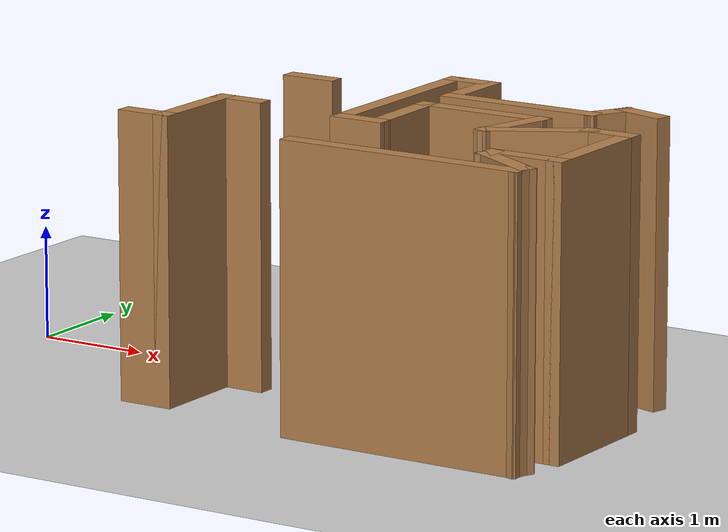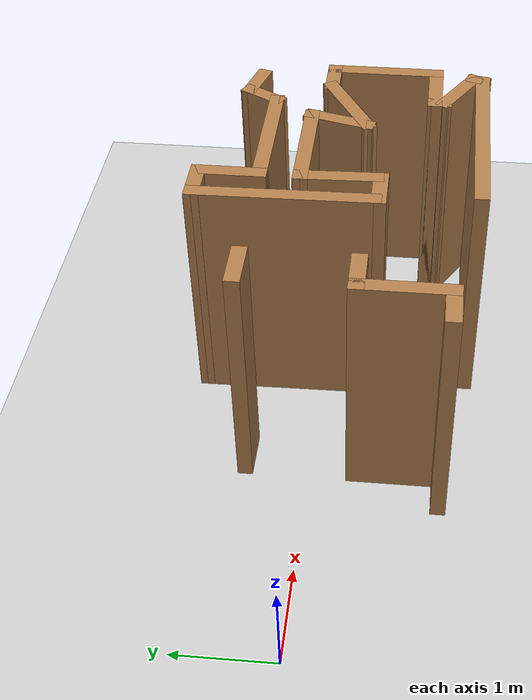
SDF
<sdf version="1.6">
 <world name="default">
  <model name="ground_plane">
   <static>1</static>
   <link name="link">
    <collision name="collision">
     <geometry><plane><normal>0 0 1</normal><size>100 100</size></plane></geometry>
     <surface><friction><ode><mu>100</mu><mu2>50</mu2></ode></friction></surface>
    </collision>
    <visual name="visual">
     <cast_shadows>0</cast_shadows>
     <geometry><plane><normal>0 0 1</normal><size>100 100</size></plane></geometry>
     <material>
      <script><uri>file://media/materials/scripts/gazebo.material</uri><name>Gazebo/Grey</name></script>
     </material>
    </visual>
   </link>
  </model>
  <model name="map_30">
   <link name="Wall_101">
    <pose>4.91655 -1.09749 0 0 -0 0</pose>
    <visual name="Wall_101_Visual">
     <pose>0 0 1.25 0 -0 0</pose>
     <geometry><box><size>2.25 0.15 2.5</size></box></geometry>
     <material>
      <script><uri>file://media/materials/scripts/gazebo.material</uri><name>Gazebo/Wood</name></script>
      <ambient>1 1 1 1</ambient>
      <shader type="pixel"/>
     </material>
     <meta><layer>0</layer></meta>
    </visual>
    <collision name="Wall_101_Collision">
     <pose>0 0 1.25 0 -0 0</pose>
     <geometry><box><size>2.25 0.15 2.5</size></box></geometry>
     <surface>
      <friction>
       <ode><mu>1</mu><mu2>1</mu2><fdir1>0 0 0</fdir1><slip1>0</slip1><slip2>0</slip2></ode>
       <torsional>
        <coefficient>1</coefficient>
        <patch_radius>0</patch_radius>
        <surface_radius>0</surface_radius>
        <use_patch_radius>1</use_patch_radius>
        <ode><slip>0</slip></ode>
       </torsional>
      </friction>
      <bounce><restitution_coefficient>0</restitution_coefficient><threshold>1e+06</threshold></bounce>
      <contact>
       <collide_without_contact>0</collide_without_contact>
       <collide_without_contact_bitmask>1</collide_without_contact_bitmask>
       <collide_bitmask>1</collide_bitmask>
       <ode>
        <soft_cfm>0</soft_cfm>
        <soft_erp>0.2</soft_erp>
        <kp>1e+13</kp>
        <kd>1</kd>
        <max_vel>0.01</max_vel>
        <min_depth>0</min_depth>
       </ode>
       <bullet>
        <split_impulse>1</split_impulse>
        <split_impulse_penetration_threshold>-0.01</split_impulse_penetration_threshold>
        <soft_cfm>0</soft_cfm>
        <soft_erp>0.2</soft_erp>
        <kp>1e+13</kp>
        <kd>1</kd>
       </bullet>
      </contact>
     </surface>
    </collision>
   </link>
   <link name="Wall_102">
    <pose>5.97949 -1.04919 0 0 -0 1.309</pose>
    <visual name="Wall_102_Visual">
     <pose>0 0 1.25 0 -0 0</pose>
     <geometry><box><size>0.25 0.15 2.5</size></box></geometry>
     <material>
      <script><uri>file://media/materials/scripts/gazebo.material</uri><name>Gazebo/Wood</name></script>
      <ambient>1 1 1 1</ambient>
      <shader type="pixel"/>
     </material>
     <meta><layer>0</layer></meta>
    </visual>
    <collision name="Wall_102_Collision">
     <pose>0 0 1.25 0 -0 0</pose>
     <geometry><box><size>0.25 0.15 2.5</size></box></geometry>
     <surface>
      <friction>
       <ode><mu>1</mu><mu2>1</mu2><fdir1>0 0 0</fdir1><slip1>0</slip1><slip2>0</slip2></ode>
       <torsional>
        <coefficient>1</coefficient>
        <patch_radius>0</patch_radius>
        <surface_radius>0</surface_radius>
        <use_patch_radius>1</use_patch_radius>
        <ode><slip>0</slip></ode>
       </torsional>
      </friction>
      <bounce><restitution_coefficient>0</restitution_coefficient><threshold>1e+06</threshold></bounce>
      <contact>
       <collide_without_contact>0</collide_without_contact>
       <collide_without_contact_bitmask>1</collide_without_contact_bitmask>
       <collide_bitmask>1</collide_bitmask>
       <ode>
        <soft_cfm>0</soft_cfm>
        <soft_erp>0.2</soft_erp>
        <kp>1e+13</kp>
        <kd>1</kd>
        <max_vel>0.01</max_vel>
        <min_depth>0</min_depth>
       </ode>
       <bullet>
        <split_impulse>1</split_impulse>
        <split_impulse_penetration_threshold>-0.01</split_impulse_penetration_threshold>
        <soft_cfm>0</soft_cfm>
        <soft_erp>0.2</soft_erp>
        <kp>1e+13</kp>
        <kd>1</kd>
       </bullet>
      </contact>
     </surface>
    </collision>
   </link>
   <link name="Wall_103">
    <pose>5.73262 -0.850895 0 0 -0 2.61799</pose>
    <visual name="Wall_103_Visual">
     <pose>0 0 1.25 0 -0 0</pose>
     <geometry><box><size>0.75 0.15 2.5</size></box></geometry>
     <material>
      <script><uri>file://media/materials/scripts/gazebo.material</uri><name>Gazebo/Wood</name></script>
      <ambient>1 1 1 1</ambient>
      <shader type="pixel"/>
     </material>
     <meta><layer>0</layer></meta>
    </visual>
    <collision name="Wall_103_Collision">
     <pose>0 0 1.25 0 -0 0</pose>
     <geometry><box><size>0.75 0.15 2.5</size></box></geometry>
     <surface>
      <friction>
       <ode><mu>1</mu><mu2>1</mu2><fdir1>0 0 0</fdir1><slip1>0</slip1><slip2>0</slip2></ode>
       <torsional>
        <coefficient>1</coefficient>
        <patch_radius>0</patch_radius>
        <surface_radius>0</surface_radius>
        <use_patch_radius>1</use_patch_radius>
        <ode><slip>0</slip></ode>
       </torsional>
      </friction>
      <bounce><restitution_coefficient>0</restitution_coefficient><threshold>1e+06</threshold></bounce>
      <contact>
       <collide_without_contact>0</collide_without_contact>
       <collide_without_contact_bitmask>1</collide_without_contact_bitmask>
       <collide_bitmask>1</collide_bitmask>
       <ode>
        <soft_cfm>0</soft_cfm>
        <soft_erp>0.2</soft_erp>
        <kp>1e+13</kp>
        <kd>1</kd>
        <max_vel>0.01</max_vel>
        <min_depth>0</min_depth>
       </ode>
       <bullet>
        <split_impulse>1</split_impulse>
        <split_impulse_penetration_threshold>-0.01</split_impulse_penetration_threshold>
        <soft_cfm>0</soft_cfm>
        <soft_erp>0.2</soft_erp>
        <kp>1e+13</kp>
        <kd>1</kd>
       </bullet>
      </contact>
     </surface>
    </collision>
   </link>
   <link name="Wall_104">
    <pose>5.47282 -0.650895 0 0 -0 1.5708</pose>
    <visual name="Wall_104_Visual">
     <pose>0 0 1.25 0 -0 0</pose>
     <geometry><box><size>0.25 0.15 2.5</size></box></geometry>
     <material>
      <script><uri>file://media/materials/scripts/gazebo.material</uri><name>Gazebo/Wood</name></script>
      <ambient>1 1 1 1</ambient>
      <shader type="pixel"/>
     </material>
     <meta><layer>0</layer></meta>
    </visual>
    <collision name="Wall_104_Collision">
     <pose>0 0 1.25 0 -0 0</pose>
     <geometry><box><size>0.25 0.15 2.5</size></box></geometry>
     <surface>
      <friction>
       <ode><mu>1</mu><mu2>1</mu2><fdir1>0 0 0</fdir1><slip1>0</slip1><slip2>0</slip2></ode>
       <torsional>
        <coefficient>1</coefficient>
        <patch_radius>0</patch_radius>
        <surface_radius>0</surface_radius>
        <use_patch_radius>1</use_patch_radius>
        <ode><slip>0</slip></ode>
       </torsional>
      </friction>
      <bounce><restitution_coefficient>0</restitution_coefficient><threshold>1e+06</threshold></bounce>
      <contact>
       <collide_without_contact>0</collide_without_contact>
       <collide_without_contact_bitmask>1</collide_without_contact_bitmask>
       <collide_bitmask>1</collide_bitmask>
       <ode>
        <soft_cfm>0</soft_cfm>
        <soft_erp>0.2</soft_erp>
        <kp>1e+13</kp>
        <kd>1</kd>
        <max_vel>0.01</max_vel>
        <min_depth>0</min_depth>
       </ode>
       <bullet>
        <split_impulse>1</split_impulse>
        <split_impulse_penetration_threshold>-0.01</split_impulse_penetration_threshold>
        <soft_cfm>0</soft_cfm>
        <soft_erp>0.2</soft_erp>
        <kp>1e+13</kp>
        <kd>1</kd>
       </bullet>
      </contact>
     </surface>
    </collision>
   </link>
   <link name="Wall_105">
    <pose>5.77282 -0.600895 0 0 -0 0</pose>
    <visual name="Wall_105_Visual">
     <pose>0 0 1.25 0 -0 0</pose>
     <geometry><box><size>0.75 0.15 2.5</size></box></geometry>
     <material>
      <script><uri>file://media/materials/scripts/gazebo.material</uri><name>Gazebo/Wood</name></script>
      <ambient>1 1 1 1</ambient>
      <shader type="pixel"/>
     </material>
     <meta><layer>0</layer></meta>
    </visual>
    <collision name="Wall_105_Collision">
     <pose>0 0 1.25 0 -0 0</pose>
     <geometry><box><size>0.75 0.15 2.5</size></box></geometry>
     <surface>
      <friction>
       <ode><mu>1</mu><mu2>1</mu2><fdir1>0 0 0</fdir1><slip1>0</slip1><slip2>0</slip2></ode>
       <torsional>
        <coefficient>1</coefficient>
        <patch_radius>0</patch_radius>
        <surface_radius>0</surface_radius>
        <use_patch_radius>1</use_patch_radius>
        <ode><slip>0</slip></ode>
       </torsional>
      </friction>
      <bounce><restitution_coefficient>0</restitution_coefficient><threshold>1e+06</threshold></bounce>
      <contact>
       <collide_without_contact>0</collide_without_contact>
       <collide_without_contact_bitmask>1</collide_without_contact_bitmask>
       <collide_bitmask>1</collide_bitmask>
       <ode>
        <soft_cfm>0</soft_cfm>
        <soft_erp>0.2</soft_erp>
        <kp>1e+13</kp>
        <kd>1</kd>
        <max_vel>0.01</max_vel>
        <min_depth>0</min_depth>
       </ode>
       <bullet>
        <split_impulse>1</split_impulse>
        <split_impulse_penetration_threshold>-0.01</split_impulse_penetration_threshold>
        <soft_cfm>0</soft_cfm>
        <soft_erp>0.2</soft_erp>
        <kp>1e+13</kp>
        <kd>1</kd>
       </bullet>
      </contact>
     </surface>
    </collision>
   </link>
   <link name="Wall_106">
    <pose>6.07282 -0.050895 0 0 -0 1.5708</pose>
    <visual name="Wall_106_Visual">
     <pose>0 0 1.25 0 -0 0</pose>
     <geometry><box><size>1.25 0.15 2.5</size></box></geometry>
     <material>
      <script><uri>file://media/materials/scripts/gazebo.material</uri><name>Gazebo/Wood</name></script>
      <ambient>1 1 1 1</ambient>
      <shader type="pixel"/>
     </material>
     <meta><layer>0</layer></meta>
    </visual>
    <collision name="Wall_106_Collision">
     <pose>0 0 1.25 0 -0 0</pose>
     <geometry><box><size>1.25 0.15 2.5</size></box></geometry>
     <surface>
      <friction>
       <ode><mu>1</mu><mu2>1</mu2><fdir1>0 0 0</fdir1><slip1>0</slip1><slip2>0</slip2></ode>
       <torsional>
        <coefficient>1</coefficient>
        <patch_radius>0</patch_radius>
        <surface_radius>0</surface_radius>
        <use_patch_radius>1</use_patch_radius>
        <ode><slip>0</slip></ode>
       </torsional>
      </friction>
      <bounce><restitution_coefficient>0</restitution_coefficient><threshold>1e+06</threshold></bounce>
      <contact>
       <collide_without_contact>0</collide_without_contact>
       <collide_without_contact_bitmask>1</collide_without_contact_bitmask>
       <collide_bitmask>1</collide_bitmask>
       <ode>
        <soft_cfm>0</soft_cfm>
        <soft_erp>0.2</soft_erp>
        <kp>1e+13</kp>
        <kd>1</kd>
        <max_vel>0.01</max_vel>
        <min_depth>0</min_depth>
       </ode>
       <bullet>
        <split_impulse>1</split_impulse>
        <split_impulse_penetration_threshold>-0.01</split_impulse_penetration_threshold>
        <soft_cfm>0</soft_cfm>
        <soft_erp>0.2</soft_erp>
        <kp>1e+13</kp>
        <kd>1</kd>
       </bullet>
      </contact>
     </surface>
    </collision>
   </link>
   <link name="Wall_107">
    <pose>5.89782 0.499105 0 0 -0 3.14159</pose>
    <visual name="Wall_107_Visual">
     <pose>0 0 1.25 0 -0 0</pose>
     <geometry><box><size>0.5 0.15 2.5</size></box></geometry>
     <material>
      <script><uri>file://media/materials/scripts/gazebo.material</uri><name>Gazebo/Wood</name></script>
      <ambient>1 1 1 1</ambient>
      <shader type="pixel"/>
     </material>
     <meta><layer>0</layer></meta>
    </visual>
    <collision name="Wall_107_Collision">
     <pose>0 0 1.25 0 -0 0</pose>
     <geometry><box><size>0.5 0.15 2.5</size></box></geometry>
     <surface>
      <friction>
       <ode><mu>1</mu><mu2>1</mu2><fdir1>0 0 0</fdir1><slip1>0</slip1><slip2>0</slip2></ode>
       <torsional>
        <coefficient>1</coefficient>
        <patch_radius>0</patch_radius>
        <surface_radius>0</surface_radius>
        <use_patch_radius>1</use_patch_radius>
        <ode><slip>0</slip></ode>
       </torsional>
      </friction>
      <bounce><restitution_coefficient>0</restitution_coefficient><threshold>1e+06</threshold></bounce>
      <contact>
       <collide_without_contact>0</collide_without_contact>
       <collide_without_contact_bitmask>1</collide_without_contact_bitmask>
       <collide_bitmask>1</collide_bitmask>
       <ode>
        <soft_cfm>0</soft_cfm>
        <soft_erp>0.2</soft_erp>
        <kp>1e+13</kp>
        <kd>1</kd>
        <max_vel>0.01</max_vel>
        <min_depth>0</min_depth>
       </ode>
       <bullet>
        <split_impulse>1</split_impulse>
        <split_impulse_penetration_threshold>-0.01</split_impulse_penetration_threshold>
        <soft_cfm>0</soft_cfm>
        <soft_erp>0.2</soft_erp>
        <kp>1e+13</kp>
        <kd>1</kd>
       </bullet>
      </contact>
     </surface>
    </collision>
   </link>
   <link name="Wall_108">
    <pose>5.35475 0.286605 0 0 0 -2.61799</pose>
    <visual name="Wall_108_Visual">
     <pose>0 0 1.25 0 -0 0</pose>
     <geometry><box><size>1 0.15 2.5</size></box></geometry>
     <material>
      <script><uri>file://media/materials/scripts/gazebo.material</uri><name>Gazebo/Wood</name></script>
      <ambient>1 1 1 1</ambient>
      <shader type="pixel"/>
     </material>
     <meta><layer>0</layer></meta>
    </visual>
    <collision name="Wall_108_Collision">
     <pose>0 0 1.25 0 -0 0</pose>
     <geometry><box><size>1 0.15 2.5</size></box></geometry>
     <surface>
      <friction>
       <ode><mu>1</mu><mu2>1</mu2><fdir1>0 0 0</fdir1><slip1>0</slip1><slip2>0</slip2></ode>
       <torsional>
        <coefficient>1</coefficient>
        <patch_radius>0</patch_radius>
        <surface_radius>0</surface_radius>
        <use_patch_radius>1</use_patch_radius>
        <ode><slip>0</slip></ode>
       </torsional>
      </friction>
      <bounce><restitution_coefficient>0</restitution_coefficient><threshold>1e+06</threshold></bounce>
      <contact>
       <collide_without_contact>0</collide_without_contact>
       <collide_without_contact_bitmask>1</collide_without_contact_bitmask>
       <collide_bitmask>1</collide_bitmask>
       <ode>
        <soft_cfm>0</soft_cfm>
        <soft_erp>0.2</soft_erp>
        <kp>1e+13</kp>
        <kd>1</kd>
        <max_vel>0.01</max_vel>
        <min_depth>0</min_depth>
       </ode>
       <bullet>
        <split_impulse>1</split_impulse>
        <split_impulse_penetration_threshold>-0.01</split_impulse_penetration_threshold>
        <soft_cfm>0</soft_cfm>
        <soft_erp>0.2</soft_erp>
        <kp>1e+13</kp>
        <kd>1</kd>
       </bullet>
      </contact>
     </surface>
    </collision>
   </link>
   <link name="Wall_109">
    <pose>5.06434 0.363883 0 0 -0 1.309</pose>
    <visual name="Wall_109_Visual">
     <pose>0 0 1.25 0 -0 0</pose>
     <geometry><box><size>0.75 0.15 2.5</size></box></geometry>
     <material>
      <script><uri>file://media/materials/scripts/gazebo.material</uri><name>Gazebo/Wood</name></script>
      <ambient>1 1 1 1</ambient>
      <shader type="pixel"/>
     </material>
     <meta><layer>0</layer></meta>
    </visual>
    <collision name="Wall_109_Collision">
     <pose>0 0 1.25 0 -0 0</pose>
     <geometry><box><size>0.75 0.15 2.5</size></box></geometry>
     <surface>
      <friction>
       <ode><mu>1</mu><mu2>1</mu2><fdir1>0 0 0</fdir1><slip1>0</slip1><slip2>0</slip2></ode>
       <torsional>
        <coefficient>1</coefficient>
        <patch_radius>0</patch_radius>
        <surface_radius>0</surface_radius>
        <use_patch_radius>1</use_patch_radius>
        <ode><slip>0</slip></ode>
       </torsional>
      </friction>
      <bounce><restitution_coefficient>0</restitution_coefficient><threshold>1e+06</threshold></bounce>
      <contact>
       <collide_without_contact>0</collide_without_contact>
       <collide_without_contact_bitmask>1</collide_without_contact_bitmask>
       <collide_bitmask>1</collide_bitmask>
       <ode>
        <soft_cfm>0</soft_cfm>
        <soft_erp>0.2</soft_erp>
        <kp>1e+13</kp>
        <kd>1</kd>
        <max_vel>0.01</max_vel>
        <min_depth>0</min_depth>
       </ode>
       <bullet>
        <split_impulse>1</split_impulse>
        <split_impulse_penetration_threshold>-0.01</split_impulse_penetration_threshold>
        <soft_cfm>0</soft_cfm>
        <soft_erp>0.2</soft_erp>
        <kp>1e+13</kp>
        <kd>1</kd>
       </bullet>
      </contact>
     </surface>
    </collision>
   </link>
   <link name="Wall_112">
    <pose>4.59199 0.653661 0 0 -0 3.14159</pose>
    <visual name="Wall_112_Visual">
     <pose>0 0 1.25 0 -0 0</pose>
     <geometry><box><size>1.25 0.15 2.5</size></box></geometry>
     <material>
      <script><uri>file://media/materials/scripts/gazebo.material</uri><name>Gazebo/Wood</name></script>
      <ambient>1 1 1 1</ambient>
      <shader type="pixel"/>
     </material>
     <meta><layer>0</layer></meta>
    </visual>
    <collision name="Wall_112_Collision">
     <pose>0 0 1.25 0 -0 0</pose>
     <geometry><box><size>1.25 0.15 2.5</size></box></geometry>
     <surface>
      <friction>
       <ode><mu>1</mu><mu2>1</mu2><fdir1>0 0 0</fdir1><slip1>0</slip1><slip2>0</slip2></ode>
       <torsional>
        <coefficient>1</coefficient>
        <patch_radius>0</patch_radius>
        <surface_radius>0</surface_radius>
        <use_patch_radius>1</use_patch_radius>
        <ode><slip>0</slip></ode>
       </torsional>
      </friction>
      <bounce><restitution_coefficient>0</restitution_coefficient><threshold>1e+06</threshold></bounce>
      <contact>
       <collide_without_contact>0</collide_without_contact>
       <collide_without_contact_bitmask>1</collide_without_contact_bitmask>
       <collide_bitmask>1</collide_bitmask>
       <ode>
        <soft_cfm>0</soft_cfm>
        <soft_erp>0.2</soft_erp>
        <kp>1e+13</kp>
        <kd>1</kd>
        <max_vel>0.01</max_vel>
        <min_depth>0</min_depth>
       </ode>
       <bullet>
        <split_impulse>1</split_impulse>
        <split_impulse_penetration_threshold>-0.01</split_impulse_penetration_threshold>
        <soft_cfm>0</soft_cfm>
        <soft_erp>0.2</soft_erp>
        <kp>1e+13</kp>
        <kd>1</kd>
       </bullet>
      </contact>
     </surface>
    </collision>
   </link>
   <link name="Wall_113">
    <pose>4.05355 0.286487 0 0 0 -1.53931</pose>
    <visual name="Wall_113_Visual">
     <pose>0 0 1.25 0 -0 0</pose>
     <geometry><box><size>0.884711 0.15 2.5</size></box></geometry>
     <material>
      <script><uri>file://media/materials/scripts/gazebo.material</uri><name>Gazebo/Wood</name></script>
      <ambient>1 1 1 1</ambient>
      <shader type="pixel"/>
     </material>
     <meta><layer>0</layer></meta>
    </visual>
    <collision name="Wall_113_Collision">
     <pose>0 0 1.25 0 -0 0</pose>
     <geometry><box><size>0.884711 0.15 2.5</size></box></geometry>
     <surface>
      <friction>
       <ode><mu>1</mu><mu2>1</mu2><fdir1>0 0 0</fdir1><slip1>0</slip1><slip2>0</slip2></ode>
       <torsional>
        <coefficient>1</coefficient>
        <patch_radius>0</patch_radius>
        <surface_radius>0</surface_radius>
        <use_patch_radius>1</use_patch_radius>
        <ode><slip>0</slip></ode>
       </torsional>
      </friction>
      <bounce><restitution_coefficient>0</restitution_coefficient><threshold>1e+06</threshold></bounce>
      <contact>
       <collide_without_contact>0</collide_without_contact>
       <collide_without_contact_bitmask>1</collide_without_contact_bitmask>
       <collide_bitmask>1</collide_bitmask>
       <ode>
        <soft_cfm>0</soft_cfm>
        <soft_erp>0.2</soft_erp>
        <kp>1e+13</kp>
        <kd>1</kd>
        <max_vel>0.01</max_vel>
        <min_depth>0</min_depth>
       </ode>
       <bullet>
        <split_impulse>1</split_impulse>
        <split_impulse_penetration_threshold>-0.01</split_impulse_penetration_threshold>
        <soft_cfm>0</soft_cfm>
        <soft_erp>0.2</soft_erp>
        <kp>1e+13</kp>
        <kd>1</kd>
       </bullet>
      </contact>
     </surface>
    </collision>
   </link>
   <link name="Wall_116">
    <pose>3.89012 -0.126947 0 0 -0 3.14159</pose>
    <visual name="Wall_116_Visual">
     <pose>0 0 1.25 0 -0 0</pose>
     <geometry><box><size>0.5 0.15 2.5</size></box></geometry>
     <material>
      <script><uri>file://media/materials/scripts/gazebo.material</uri><name>Gazebo/Wood</name></script>
      <ambient>1 1 1 1</ambient>
      <shader type="pixel"/>
     </material>
     <meta><layer>0</layer></meta>
    </visual>
    <collision name="Wall_116_Collision">
     <pose>0 0 1.25 0 -0 0</pose>
     <geometry><box><size>0.5 0.15 2.5</size></box></geometry>
     <surface>
      <friction>
       <ode><mu>1</mu><mu2>1</mu2><fdir1>0 0 0</fdir1><slip1>0</slip1><slip2>0</slip2></ode>
       <torsional>
        <coefficient>1</coefficient>
        <patch_radius>0</patch_radius>
        <surface_radius>0</surface_radius>
        <use_patch_radius>1</use_patch_radius>
        <ode><slip>0</slip></ode>
       </torsional>
      </friction>
      <bounce><restitution_coefficient>0</restitution_coefficient><threshold>1e+06</threshold></bounce>
      <contact>
       <collide_without_contact>0</collide_without_contact>
       <collide_without_contact_bitmask>1</collide_without_contact_bitmask>
       <collide_bitmask>1</collide_bitmask>
       <ode>
        <soft_cfm>0</soft_cfm>
        <soft_erp>0.2</soft_erp>
        <kp>1e+13</kp>
        <kd>1</kd>
        <max_vel>0.01</max_vel>
        <min_depth>0</min_depth>
       </ode>
       <bullet>
        <split_impulse>1</split_impulse>
        <split_impulse_penetration_threshold>-0.01</split_impulse_penetration_threshold>
        <soft_cfm>0</soft_cfm>
        <soft_erp>0.2</soft_erp>
        <kp>1e+13</kp>
        <kd>1</kd>
       </bullet>
      </contact>
     </surface>
    </collision>
   </link>
   <link name="Wall_117">
    <pose>3.70355 0.786487 0 0 -0 1.58413</pose>
    <visual name="Wall_117_Visual">
     <pose>0 0 1.25 0 -0 0</pose>
     <geometry><box><size>1.8845 0.15 2.5</size></box></geometry>
     <material>
      <script><uri>file://media/materials/scripts/gazebo.material</uri><name>Gazebo/Wood</name></script>
      <ambient>1 1 1 1</ambient>
      <shader type="pixel"/>
     </material>
     <meta><layer>0</layer></meta>
    </visual>
    <collision name="Wall_117_Collision">
     <pose>0 0 1.25 0 -0 0</pose>
     <geometry><box><size>1.8845 0.15 2.5</size></box></geometry>
     <surface>
      <friction>
       <ode><mu>1</mu><mu2>1</mu2><fdir1>0 0 0</fdir1><slip1>0</slip1><slip2>0</slip2></ode>
       <torsional>
        <coefficient>1</coefficient>
        <patch_radius>0</patch_radius>
        <surface_radius>0</surface_radius>
        <use_patch_radius>1</use_patch_radius>
        <ode><slip>0</slip></ode>
       </torsional>
      </friction>
      <bounce><restitution_coefficient>0</restitution_coefficient><threshold>1e+06</threshold></bounce>
      <contact>
       <collide_without_contact>0</collide_without_contact>
       <collide_without_contact_bitmask>1</collide_without_contact_bitmask>
       <collide_bitmask>1</collide_bitmask>
       <ode>
        <soft_cfm>0</soft_cfm>
        <soft_erp>0.2</soft_erp>
        <kp>1e+13</kp>
        <kd>1</kd>
        <max_vel>0.01</max_vel>
        <min_depth>0</min_depth>
       </ode>
       <bullet>
        <split_impulse>1</split_impulse>
        <split_impulse_penetration_threshold>-0.01</split_impulse_penetration_threshold>
        <soft_cfm>0</soft_cfm>
        <soft_erp>0.2</soft_erp>
        <kp>1e+13</kp>
        <kd>1</kd>
       </bullet>
      </contact>
     </surface>
    </collision>
   </link>
   <link name="Wall_118">
    <pose>3.86699 1.65366 0 0 -0 0</pose>
    <visual name="Wall_118_Visual">
     <pose>0 0 1.25 0 -0 0</pose>
     <geometry><box><size>0.5 0.15 2.5</size></box></geometry>
     <material>
      <script><uri>file://media/materials/scripts/gazebo.material</uri><name>Gazebo/Wood</name></script>
      <ambient>1 1 1 1</ambient>
      <shader type="pixel"/>
     </material>
     <meta><layer>0</layer></meta>
    </visual>
    <collision name="Wall_118_Collision">
     <pose>0 0 1.25 0 -0 0</pose>
     <geometry><box><size>0.5 0.15 2.5</size></box></geometry>
     <surface>
      <friction>
       <ode><mu>1</mu><mu2>1</mu2><fdir1>0 0 0</fdir1><slip1>0</slip1><slip2>0</slip2></ode>
       <torsional>
        <coefficient>1</coefficient>
        <patch_radius>0</patch_radius>
        <surface_radius>0</surface_radius>
        <use_patch_radius>1</use_patch_radius>
        <ode><slip>0</slip></ode>
       </torsional>
      </friction>
      <bounce><restitution_coefficient>0</restitution_coefficient><threshold>1e+06</threshold></bounce>
      <contact>
       <collide_without_contact>0</collide_without_contact>
       <collide_without_contact_bitmask>1</collide_without_contact_bitmask>
       <collide_bitmask>1</collide_bitmask>
       <ode>
        <soft_cfm>0</soft_cfm>
        <soft_erp>0.2</soft_erp>
        <kp>1e+13</kp>
        <kd>1</kd>
        <max_vel>0.01</max_vel>
        <min_depth>0</min_depth>
       </ode>
       <bullet>
        <split_impulse>1</split_impulse>
        <split_impulse_penetration_threshold>-0.01</split_impulse_penetration_threshold>
        <soft_cfm>0</soft_cfm>
        <soft_erp>0.2</soft_erp>
        <kp>1e+13</kp>
        <kd>1</kd>
       </bullet>
      </contact>
     </surface>
    </collision>
   </link>
   <link name="Wall_121">
    <pose>4.04199 1.35366 0 0 0 -1.5708</pose>
    <visual name="Wall_121_Visual">
     <pose>0 0 1.25 0 -0 0</pose>
     <geometry><box><size>0.75 0.15 2.5</size></box></geometry>
     <material>
      <script><uri>file://media/materials/scripts/gazebo.material</uri><name>Gazebo/Wood</name></script>
      <ambient>1 1 1 1</ambient>
      <shader type="pixel"/>
     </material>
     <meta><layer>0</layer></meta>
    </visual>
    <collision name="Wall_121_Collision">
     <pose>0 0 1.25 0 -0 0</pose>
     <geometry><box><size>0.75 0.15 2.5</size></box></geometry>
     <surface>
      <friction>
       <ode><mu>1</mu><mu2>1</mu2><fdir1>0 0 0</fdir1><slip1>0</slip1><slip2>0</slip2></ode>
       <torsional>
        <coefficient>1</coefficient>
        <patch_radius>0</patch_radius>
        <surface_radius>0</surface_radius>
        <use_patch_radius>1</use_patch_radius>
        <ode><slip>0</slip></ode>
       </torsional>
      </friction>
      <bounce><restitution_coefficient>0</restitution_coefficient><threshold>1e+06</threshold></bounce>
      <contact>
       <collide_without_contact>0</collide_without_contact>
       <collide_without_contact_bitmask>1</collide_without_contact_bitmask>
       <collide_bitmask>1</collide_bitmask>
       <ode>
        <soft_cfm>0</soft_cfm>
        <soft_erp>0.2</soft_erp>
        <kp>1e+13</kp>
        <kd>1</kd>
        <max_vel>0.01</max_vel>
        <min_depth>0</min_depth>
       </ode>
       <bullet>
        <split_impulse>1</split_impulse>
        <split_impulse_penetration_threshold>-0.01</split_impulse_penetration_threshold>
        <soft_cfm>0</soft_cfm>
        <soft_erp>0.2</soft_erp>
        <kp>1e+13</kp>
        <kd>1</kd>
       </bullet>
      </contact>
     </surface>
    </collision>
   </link>
   <link name="Wall_122">
    <pose>4.71699 1.05366 0 0 -0 0</pose>
    <visual name="Wall_122_Visual">
     <pose>0 0 1.25 0 -0 0</pose>
     <geometry><box><size>1.5 0.15 2.5</size></box></geometry>
     <material>
      <script><uri>file://media/materials/scripts/gazebo.material</uri><name>Gazebo/Wood</name></script>
      <ambient>1 1 1 1</ambient>
      <shader type="pixel"/>
     </material>
     <meta><layer>0</layer></meta>
    </visual>
    <collision name="Wall_122_Collision">
     <pose>0 0 1.25 0 -0 0</pose>
     <geometry><box><size>1.5 0.15 2.5</size></box></geometry>
     <surface>
      <friction>
       <ode><mu>1</mu><mu2>1</mu2><fdir1>0 0 0</fdir1><slip1>0</slip1><slip2>0</slip2></ode>
       <torsional>
        <coefficient>1</coefficient>
        <patch_radius>0</patch_radius>
        <surface_radius>0</surface_radius>
        <use_patch_radius>1</use_patch_radius>
        <ode><slip>0</slip></ode>
       </torsional>
      </friction>
      <bounce><restitution_coefficient>0</restitution_coefficient><threshold>1e+06</threshold></bounce>
      <contact>
       <collide_without_contact>0</collide_without_contact>
       <collide_without_contact_bitmask>1</collide_without_contact_bitmask>
       <collide_bitmask>1</collide_bitmask>
       <ode>
        <soft_cfm>0</soft_cfm>
        <soft_erp>0.2</soft_erp>
        <kp>1e+13</kp>
        <kd>1</kd>
        <max_vel>0.01</max_vel>
        <min_depth>0</min_depth>
       </ode>
       <bullet>
        <split_impulse>1</split_impulse>
        <split_impulse_penetration_threshold>-0.01</split_impulse_penetration_threshold>
        <soft_cfm>0</soft_cfm>
        <soft_erp>0.2</soft_erp>
        <kp>1e+13</kp>
        <kd>1</kd>
       </bullet>
      </contact>
     </surface>
    </collision>
   </link>
   <link name="Wall_123">
    <pose>5.47949 1.20521 0 0 -0 1.0472</pose>
    <visual name="Wall_123_Visual">
     <pose>0 0 1.25 0 -0 0</pose>
     <geometry><box><size>0.5 0.15 2.5</size></box></geometry>
     <material>
      <script><uri>file://media/materials/scripts/gazebo.material</uri><name>Gazebo/Wood</name></script>
      <ambient>1 1 1 1</ambient>
      <shader type="pixel"/>
     </material>
     <meta><layer>0</layer></meta>
    </visual>
    <collision name="Wall_123_Collision">
     <pose>0 0 1.25 0 -0 0</pose>
     <geometry><box><size>0.5 0.15 2.5</size></box></geometry>
     <surface>
      <friction>
       <ode><mu>1</mu><mu2>1</mu2><fdir1>0 0 0</fdir1><slip1>0</slip1><slip2>0</slip2></ode>
       <torsional>
        <coefficient>1</coefficient>
        <patch_radius>0</patch_radius>
        <surface_radius>0</surface_radius>
        <use_patch_radius>1</use_patch_radius>
        <ode><slip>0</slip></ode>
       </torsional>
      </friction>
      <bounce><restitution_coefficient>0</restitution_coefficient><threshold>1e+06</threshold></bounce>
      <contact>
       <collide_without_contact>0</collide_without_contact>
       <collide_without_contact_bitmask>1</collide_without_contact_bitmask>
       <collide_bitmask>1</collide_bitmask>
       <ode>
        <soft_cfm>0</soft_cfm>
        <soft_erp>0.2</soft_erp>
        <kp>1e+13</kp>
        <kd>1</kd>
        <max_vel>0.01</max_vel>
        <min_depth>0</min_depth>
       </ode>
       <bullet>
        <split_impulse>1</split_impulse>
        <split_impulse_penetration_threshold>-0.01</split_impulse_penetration_threshold>
        <soft_cfm>0</soft_cfm>
        <soft_erp>0.2</soft_erp>
        <kp>1e+13</kp>
        <kd>1</kd>
       </bullet>
      </contact>
     </surface>
    </collision>
   </link>
   <link name="Wall_124">
    <pose>5.73602 1.31148 0 0 0 -0.261799</pose>
    <visual name="Wall_124_Visual">
     <pose>0 0 1.25 0 -0 0</pose>
     <geometry><box><size>0.5 0.15 2.5</size></box></geometry>
     <material>
      <script><uri>file://media/materials/scripts/gazebo.material</uri><name>Gazebo/Wood</name></script>
      <ambient>1 1 1 1</ambient>
      <shader type="pixel"/>
     </material>
     <meta><layer>0</layer></meta>
    </visual>
    <collision name="Wall_124_Collision">
     <pose>0 0 1.25 0 -0 0</pose>
     <geometry><box><size>0.5 0.15 2.5</size></box></geometry>
     <surface>
      <friction>
       <ode><mu>1</mu><mu2>1</mu2><fdir1>0 0 0</fdir1><slip1>0</slip1><slip2>0</slip2></ode>
       <torsional>
        <coefficient>1</coefficient>
        <patch_radius>0</patch_radius>
        <surface_radius>0</surface_radius>
        <use_patch_radius>1</use_patch_radius>
        <ode><slip>0</slip></ode>
       </torsional>
      </friction>
      <bounce><restitution_coefficient>0</restitution_coefficient><threshold>1e+06</threshold></bounce>
      <contact>
       <collide_without_contact>0</collide_without_contact>
       <collide_without_contact_bitmask>1</collide_without_contact_bitmask>
       <collide_bitmask>1</collide_bitmask>
       <ode>
        <soft_cfm>0</soft_cfm>
        <soft_erp>0.2</soft_erp>
        <kp>1e+13</kp>
        <kd>1</kd>
        <max_vel>0.01</max_vel>
        <min_depth>0</min_depth>
       </ode>
       <bullet>
        <split_impulse>1</split_impulse>
        <split_impulse_penetration_threshold>-0.01</split_impulse_penetration_threshold>
        <soft_cfm>0</soft_cfm>
        <soft_erp>0.2</soft_erp>
        <kp>1e+13</kp>
        <kd>1</kd>
       </bullet>
      </contact>
     </surface>
    </collision>
   </link>
   <link name="Wall_145">
    <pose>2.63006 1.06618 0 0 -0 3.14159</pose>
    <visual name="Wall_145_Visual">
     <pose>0 0 1.25 0 -0 0</pose>
     <geometry><box><size>0.5 0.15 2.5</size></box></geometry>
     <material>
      <script><uri>file://media/materials/scripts/gazebo.material</uri><name>Gazebo/Wood</name></script>
      <ambient>1 1 1 1</ambient>
      <shader type="pixel"/>
     </material>
     <meta><layer>0</layer></meta>
    </visual>
    <collision name="Wall_145_Collision">
     <pose>0 0 1.25 0 -0 0</pose>
     <geometry><box><size>0.5 0.15 2.5</size></box></geometry>
     <surface>
      <friction>
       <ode><mu>1</mu><mu2>1</mu2><fdir1>0 0 0</fdir1><slip1>0</slip1><slip2>0</slip2></ode>
       <torsional>
        <coefficient>1</coefficient>
        <patch_radius>0</patch_radius>
        <surface_radius>0</surface_radius>
        <use_patch_radius>1</use_patch_radius>
        <ode><slip>0</slip></ode>
       </torsional>
      </friction>
      <bounce><restitution_coefficient>0</restitution_coefficient><threshold>1e+06</threshold></bounce>
      <contact>
       <collide_without_contact>0</collide_without_contact>
       <collide_without_contact_bitmask>1</collide_without_contact_bitmask>
       <collide_bitmask>1</collide_bitmask>
       <ode>
        <soft_cfm>0</soft_cfm>
        <soft_erp>0.2</soft_erp>
        <kp>1e+13</kp>
        <kd>1</kd>
        <max_vel>0.01</max_vel>
        <min_depth>0</min_depth>
       </ode>
       <bullet>
        <split_impulse>1</split_impulse>
        <split_impulse_penetration_threshold>-0.01</split_impulse_penetration_threshold>
        <soft_cfm>0</soft_cfm>
        <soft_erp>0.2</soft_erp>
        <kp>1e+13</kp>
        <kd>1</kd>
       </bullet>
      </contact>
     </surface>
    </collision>
   </link>
   <link name="Wall_73">
    <pose>2.27537 -0.866183 0 0 -0 0</pose>
    <visual name="Wall_73_Visual">
     <pose>0 0 1.25 0 -0 0</pose>
     <geometry><box><size>0.5 0.15 2.5</size></box></geometry>
     <material>
      <script><uri>file://media/materials/scripts/gazebo.material</uri><name>Gazebo/Wood</name></script>
      <ambient>1 1 1 1</ambient>
      <shader type="pixel"/>
     </material>
     <meta><layer>0</layer></meta>
    </visual>
    <collision name="Wall_73_Collision">
     <pose>0 0 1.25 0 -0 0</pose>
     <geometry><box><size>0.5 0.15 2.5</size></box></geometry>
     <surface>
      <friction>
       <ode><mu>1</mu><mu2>1</mu2><fdir1>0 0 0</fdir1><slip1>0</slip1><slip2>0</slip2></ode>
       <torsional>
        <coefficient>1</coefficient>
        <patch_radius>0</patch_radius>
        <surface_radius>0</surface_radius>
        <use_patch_radius>1</use_patch_radius>
        <ode><slip>0</slip></ode>
       </torsional>
      </friction>
      <bounce><restitution_coefficient>0</restitution_coefficient><threshold>1e+06</threshold></bounce>
      <contact>
       <collide_without_contact>0</collide_without_contact>
       <collide_without_contact_bitmask>1</collide_without_contact_bitmask>
       <collide_bitmask>1</collide_bitmask>
       <ode>
        <soft_cfm>0</soft_cfm>
        <soft_erp>0.2</soft_erp>
        <kp>1e+13</kp>
        <kd>1</kd>
        <max_vel>0.01</max_vel>
        <min_depth>0</min_depth>
       </ode>
       <bullet>
        <split_impulse>1</split_impulse>
        <split_impulse_penetration_threshold>-0.01</split_impulse_penetration_threshold>
        <soft_cfm>0</soft_cfm>
        <soft_erp>0.2</soft_erp>
        <kp>1e+13</kp>
        <kd>1</kd>
       </bullet>
      </contact>
     </surface>
    </collision>
   </link>
   <link name="Wall_74">
    <pose>2.45037 -0.441183 0 0 -0 1.5708</pose>
    <visual name="Wall_74_Visual">
     <pose>0 0 1.25 0 -0 0</pose>
     <geometry><box><size>1 0.15 2.5</size></box></geometry>
     <material>
      <script><uri>file://media/materials/scripts/gazebo.material</uri><name>Gazebo/Wood</name></script>
      <ambient>1 1 1 1</ambient>
      <shader type="pixel"/>
     </material>
     <meta><layer>0</layer></meta>
    </visual>
    <collision name="Wall_74_Collision">
     <pose>0 0 1.25 0 -0 0</pose>
     <geometry><box><size>1 0.15 2.5</size></box></geometry>
     <surface>
      <friction>
       <ode><mu>1</mu><mu2>1</mu2><fdir1>0 0 0</fdir1><slip1>0</slip1><slip2>0</slip2></ode>
       <torsional>
        <coefficient>1</coefficient>
        <patch_radius>0</patch_radius>
        <surface_radius>0</surface_radius>
        <use_patch_radius>1</use_patch_radius>
        <ode><slip>0</slip></ode>
       </torsional>
      </friction>
      <bounce><restitution_coefficient>0</restitution_coefficient><threshold>1e+06</threshold></bounce>
      <contact>
       <collide_without_contact>0</collide_without_contact>
       <collide_without_contact_bitmask>1</collide_without_contact_bitmask>
       <collide_bitmask>1</collide_bitmask>
       <ode>
        <soft_cfm>0</soft_cfm>
        <soft_erp>0.2</soft_erp>
        <kp>1e+13</kp>
        <kd>1</kd>
        <max_vel>0.01</max_vel>
        <min_depth>0</min_depth>
       </ode>
       <bullet>
        <split_impulse>1</split_impulse>
        <split_impulse_penetration_threshold>-0.01</split_impulse_penetration_threshold>
        <soft_cfm>0</soft_cfm>
        <soft_erp>0.2</soft_erp>
        <kp>1e+13</kp>
        <kd>1</kd>
       </bullet>
      </contact>
     </surface>
    </collision>
   </link>
   <link name="Wall_75">
    <pose>2.62537 -0.016183 0 0 -0 0</pose>
    <visual name="Wall_75_Visual">
     <pose>0 0 1.25 0 -0 0</pose>
     <geometry><box><size>0.5 0.15 2.5</size></box></geometry>
     <material>
      <script><uri>file://media/materials/scripts/gazebo.material</uri><name>Gazebo/Wood</name></script>
      <ambient>1 1 1 1</ambient>
      <shader type="pixel"/>
     </material>
     <meta><layer>0</layer></meta>
    </visual>
    <collision name="Wall_75_Collision">
     <pose>0 0 1.25 0 -0 0</pose>
     <geometry><box><size>0.5 0.15 2.5</size></box></geometry>
     <surface>
      <friction>
       <ode><mu>1</mu><mu2>1</mu2><fdir1>0 0 0</fdir1><slip1>0</slip1><slip2>0</slip2></ode>
       <torsional>
        <coefficient>1</coefficient>
        <patch_radius>0</patch_radius>
        <surface_radius>0</surface_radius>
        <use_patch_radius>1</use_patch_radius>
        <ode><slip>0</slip></ode>
       </torsional>
      </friction>
      <bounce><restitution_coefficient>0</restitution_coefficient><threshold>1e+06</threshold></bounce>
      <contact>
       <collide_without_contact>0</collide_without_contact>
       <collide_without_contact_bitmask>1</collide_without_contact_bitmask>
       <collide_bitmask>1</collide_bitmask>
       <ode>
        <soft_cfm>0</soft_cfm>
        <soft_erp>0.2</soft_erp>
        <kp>1e+13</kp>
        <kd>1</kd>
        <max_vel>0.01</max_vel>
        <min_depth>0</min_depth>
       </ode>
       <bullet>
        <split_impulse>1</split_impulse>
        <split_impulse_penetration_threshold>-0.01</split_impulse_penetration_threshold>
        <soft_cfm>0</soft_cfm>
        <soft_erp>0.2</soft_erp>
        <kp>1e+13</kp>
        <kd>1</kd>
       </bullet>
      </contact>
     </surface>
    </collision>
   </link>
   <static>1</static>
   <pose>-0.242413 -0.443035 0 0 -0 0</pose>
  </model>
 </world>
</sdf>
